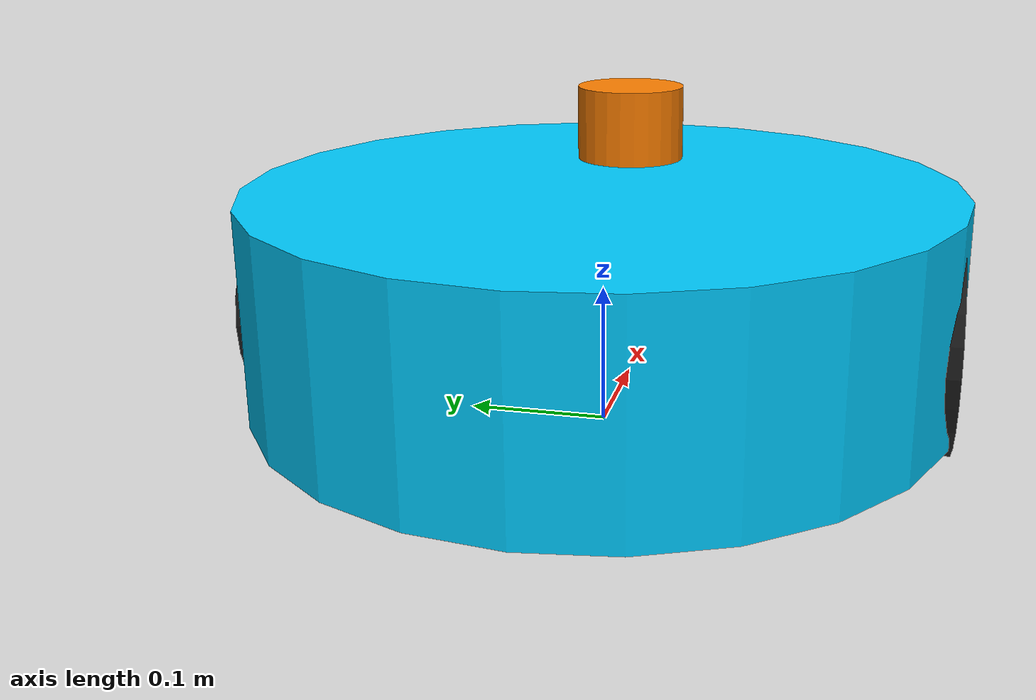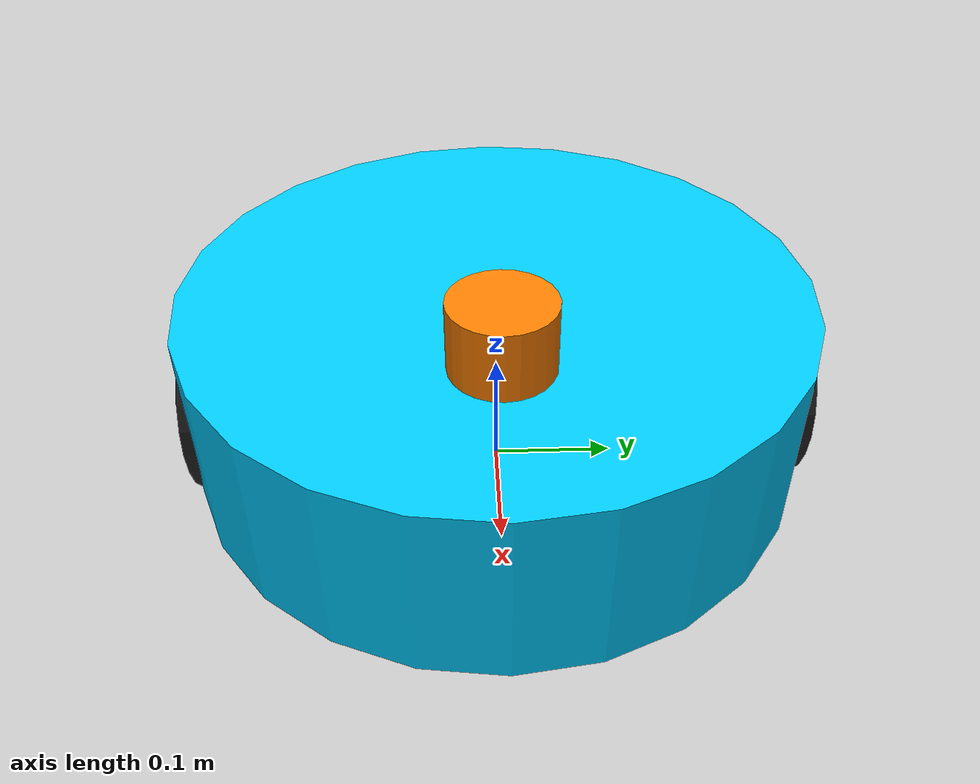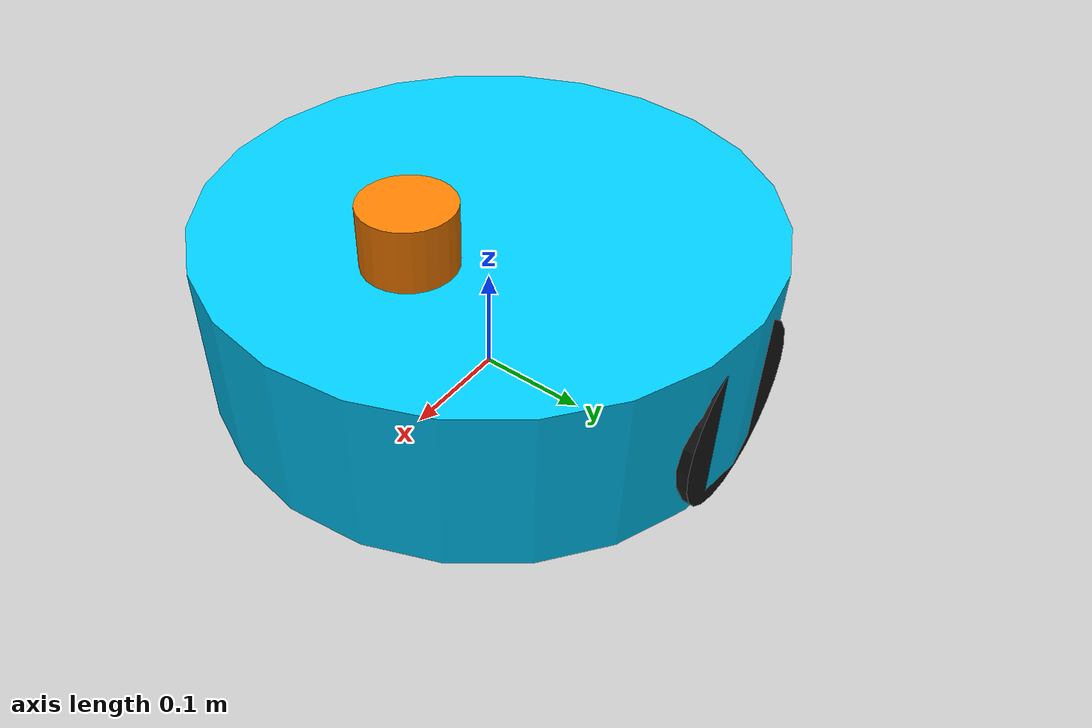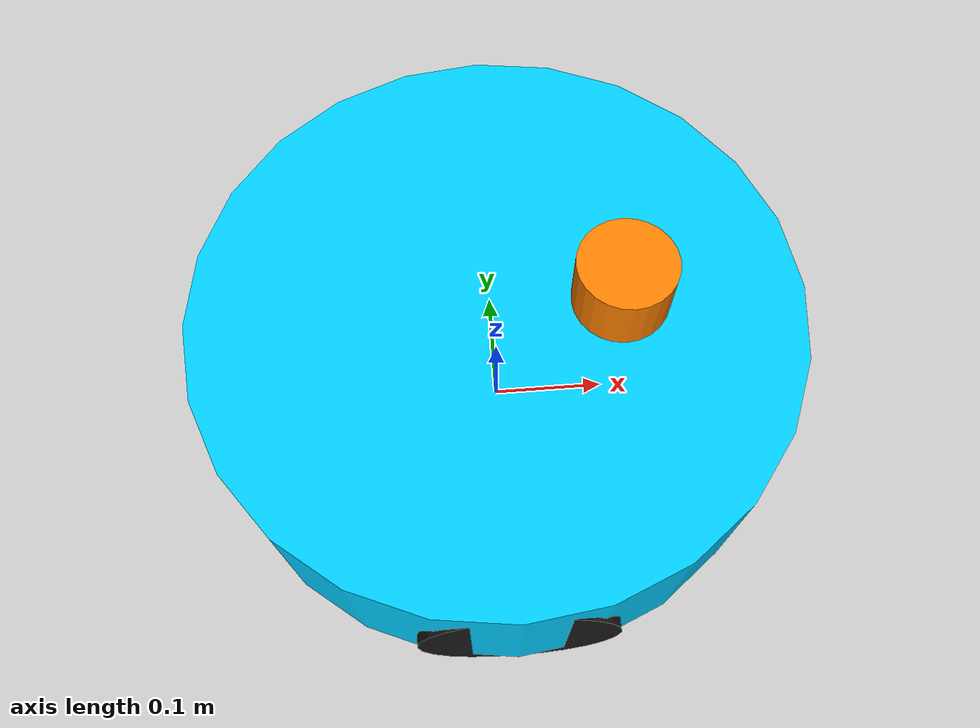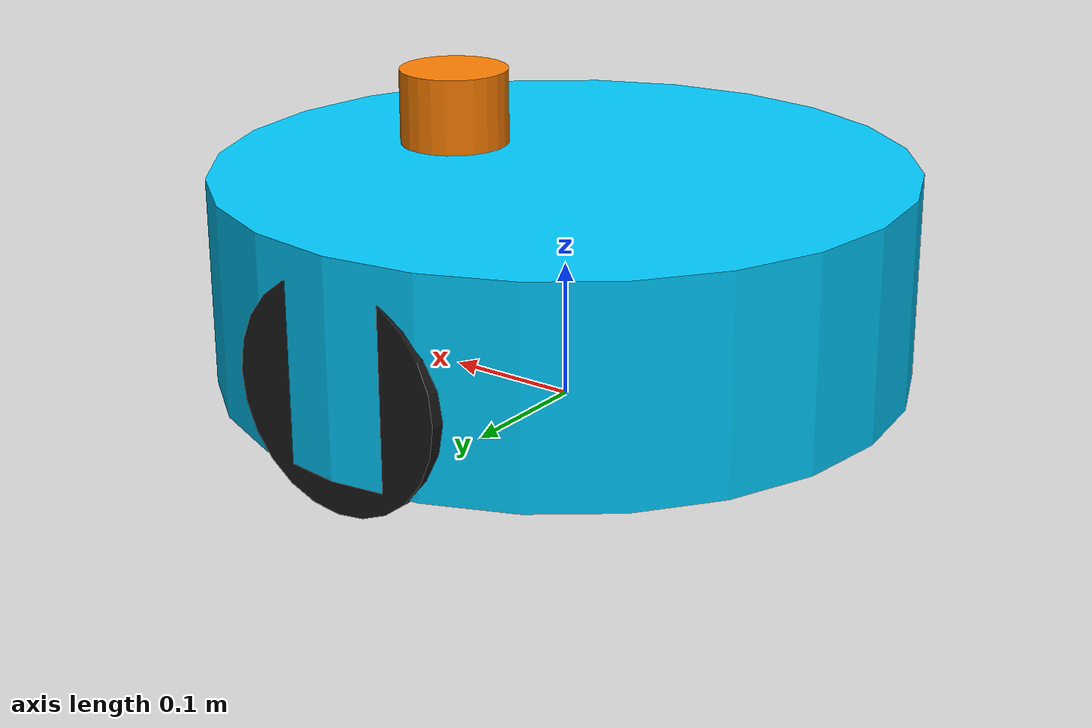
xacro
<?xml version="1.0"?>
<robot name="amr_robot" xmlns:xacro="http://www.ros.org/wiki/xacro">

  <!-- Base Link -->
  <link name="base_link">
    <visual>
      <origin xyz="0 0 0.1" rpy="0 0 0"/>
      <geometry>
        <cylinder length="0.15" radius="0.25"/>
      </geometry>
      <material name="cyan">
        <color rgba="0.0 0.8 1.0 1.0"/>
      </material>
    </visual>
    <collision>
      <origin xyz="0 0 0.1" rpy="0 0 0"/>
      <geometry>
        <cylinder length="0.15" radius="0.25"/>
      </geometry>
    </collision>
    <inertial>
      <mass value="10.0"/>
      <origin xyz="0 0 0.1"/>
      <inertia ixx="0.175" ixy="0" ixz="0" iyy="0.175" iyz="0" izz="0.3125"/>
    </inertial>
  </link>

  <!-- Left Wheel -->
  <link name="left_wheel">
    <visual>
      <origin xyz="0 0 0" rpy="1.5707963 0 0"/>
      <geometry>
        <cylinder length="0.05" radius="0.08"/>
      </geometry>
      <material name="black">
        <color rgba="0.1 0.1 0.1 1.0"/>
      </material>
    </visual>
    <collision>
      <origin xyz="0 0 0" rpy="1.5707963 0 0"/>
      <geometry>
        <cylinder length="0.05" radius="0.08"/>
      </geometry>
    </collision>
    <inertial>
      <mass value="1.5"/>
      <inertia ixx="0.0027" ixy="0" ixz="0" iyy="0.0027" iyz="0" izz="0.0048"/>
    </inertial>
  </link>

  <joint name="left_wheel_joint" type="continuous">
    <parent link="base_link"/>
    <child link="left_wheel"/>
    <origin xyz="0 0.22 0.08" rpy="0 0 0"/>
    <axis xyz="0 1 0"/>
  </joint>

  <!-- Right Wheel -->
  <link name="right_wheel">
    <visual>
      <origin xyz="0 0 0" rpy="1.5707963 0 0"/>
      <geometry>
        <cylinder length="0.05" radius="0.08"/>
      </geometry>
      <material name="black">
        <color rgba="0.1 0.1 0.1 1.0"/>
      </material>
    </visual>
    <collision>
      <origin xyz="0 0 0" rpy="1.5707963 0 0"/>
      <geometry>
        <cylinder length="0.05" radius="0.08"/>
      </geometry>
    </collision>
    <inertial>
      <mass value="1.5"/>
      <inertia ixx="0.0027" ixy="0" ixz="0" iyy="0.0027" iyz="0" izz="0.0048"/>
    </inertial>
  </link>

  <joint name="right_wheel_joint" type="continuous">
    <parent link="base_link"/>
    <child link="right_wheel"/>
    <origin xyz="0 -0.22 0.08" rpy="0 0 0"/>
    <axis xyz="0 1 0"/>
  </joint>

  <!-- Caster Support Wheel -->
  <link name="caster_wheel">
    <visual>
      <geometry>
        <sphere radius="0.05"/>
      </geometry>
      <material name="grey">
        <color rgba="0.5 0.5 0.5 1.0"/>
      </material>
    </visual>
    <collision>
      <geometry>
        <sphere radius="0.05"/>
      </geometry>
    </collision>
    <inertial>
      <mass value="0.5"/>
      <inertia ixx="0.0005" ixy="0" ixz="0" iyy="0.0005" iyz="0" izz="0.0005"/>
    </inertial>
  </link>

  <joint name="caster_joint" type="fixed">
    <parent link="base_link"/>
    <child link="caster_wheel"/>
    <origin xyz="0.18 0 0.05" rpy="0 0 0"/>
  </joint>

  <!-- LiDAR Tower -->
  <link name="laser">
    <visual>
      <geometry>
        <cylinder length="0.06" radius="0.04"/>
      </geometry>
      <material name="orange">
        <color rgba="1.0 0.5 0.0 1.0"/>
      </material>
    </visual>
    <collision>
      <geometry>
        <cylinder length="0.06" radius="0.04"/>
      </geometry>
    </collision>
    <inertial>
      <mass value="0.3"/>
      <inertia ixx="0.0002" ixy="0" ixz="0" iyy="0.0002" iyz="0" izz="0.0002"/>
    </inertial>
  </link>

  <joint name="laser_joint" type="fixed">
    <parent link="base_link"/>
    <child link="laser"/>
    <origin xyz="0.1 0 0.20" rpy="0 0 0"/>
  </joint>

  <!-- IMU Sensor Link -->
  <link name="imu_link"/>
  <joint name="imu_joint" type="fixed">
    <parent link="base_link"/>
    <child link="imu_link"/>
    <origin xyz="0 0 0.1" rpy="0 0 0"/>
  </joint>

  <!-- Gazebo Differential Drive Plugin -->
  <gazebo>
    <plugin name="diff_drive_controller" filename="libgazebo_ros_diff_drive.so">
      <ros>
        <namespace>/</namespace>
        <remapping>cmd_vel:=cmd_vel</remapping>
        <remapping>odom:=odom</remapping>
      </ros>
      <update_rate>50</update_rate>
      <left_joint>left_wheel_joint</left_joint>
      <right_joint>right_wheel_joint</right_joint>
      <wheel_separation>0.44</wheel_separation>
      <wheel_diameter>0.16</wheel_diameter>
      <max_wheel_torque>20</max_wheel_torque>
      <max_wheel_acceleration>1.0</max_wheel_acceleration>
      <publish_odom>true</publish_odom>
      <publish_odom_tf>true</publish_odom_tf>
      <publish_wheel_tf>true</publish_wheel_tf>
      <odometry_frame>odom</odometry_frame>
      <robot_base_frame>base_link</robot_base_frame>
    </plugin>
  </gazebo>

  <!-- Gazebo Laser Sensor Plugin -->
  <gazebo reference="laser">
    <sensor type="ray" name="amr_lidar">
      <pose>0 0 0 0 0 0</pose>
      <visualize>true</visualize>
      <update_rate>10</update_rate>
      <ray>
        <scan>
          <horizontal>
            <samples>360</samples>
            <resolution>1</resolution>
            <min_angle>-3.14159265</min_angle>
            <max_angle>3.14159265</max_angle>
          </horizontal>
        </scan>
        <range>
          <min>0.12</min>
          <max>10.0</max>
          <resolution>0.01</resolution>
        </range>
      </ray>
      <plugin name="amr_laser_controller" filename="libgazebo_ros_ray_sensor.so">
        <ros>
          <argument>~/out:=scan</argument>
        </ros>
        <output_type>sensor_msgs/LaserScan</output_type>
        <frame_name>laser</frame_name>
      </plugin>
    </sensor>
  </gazebo>

</robot>
